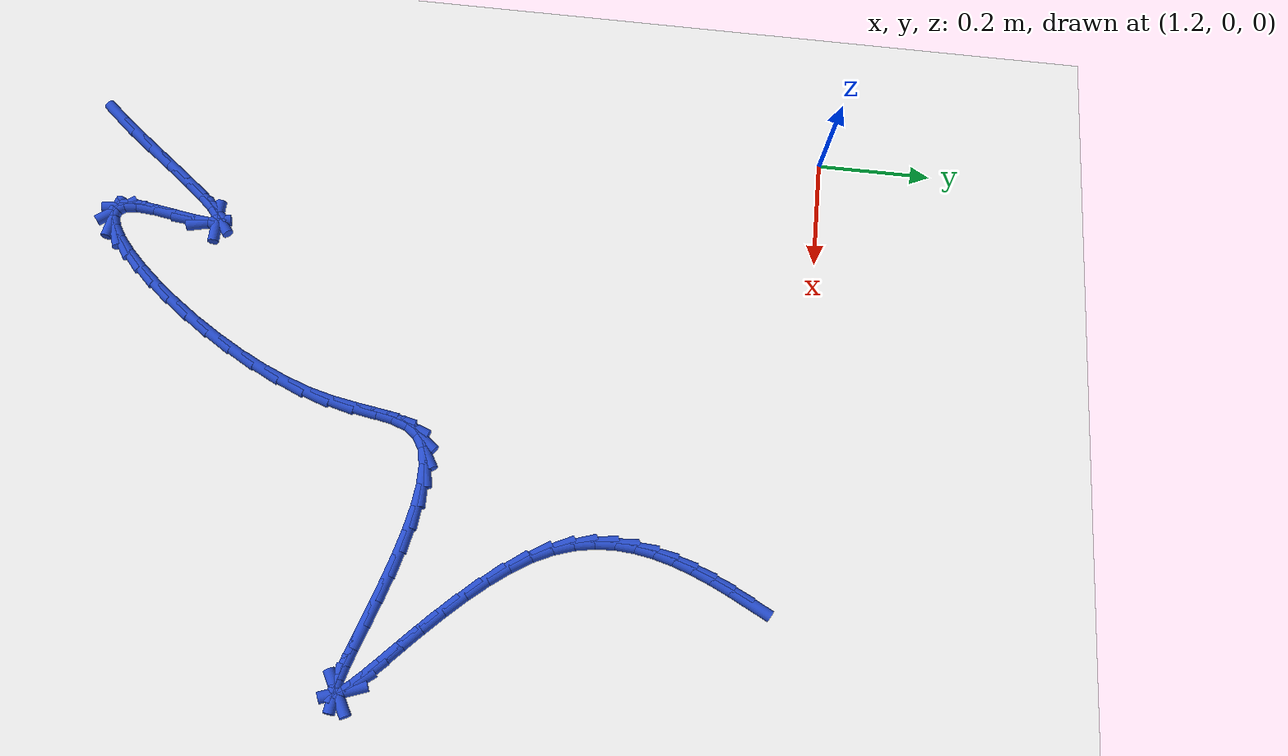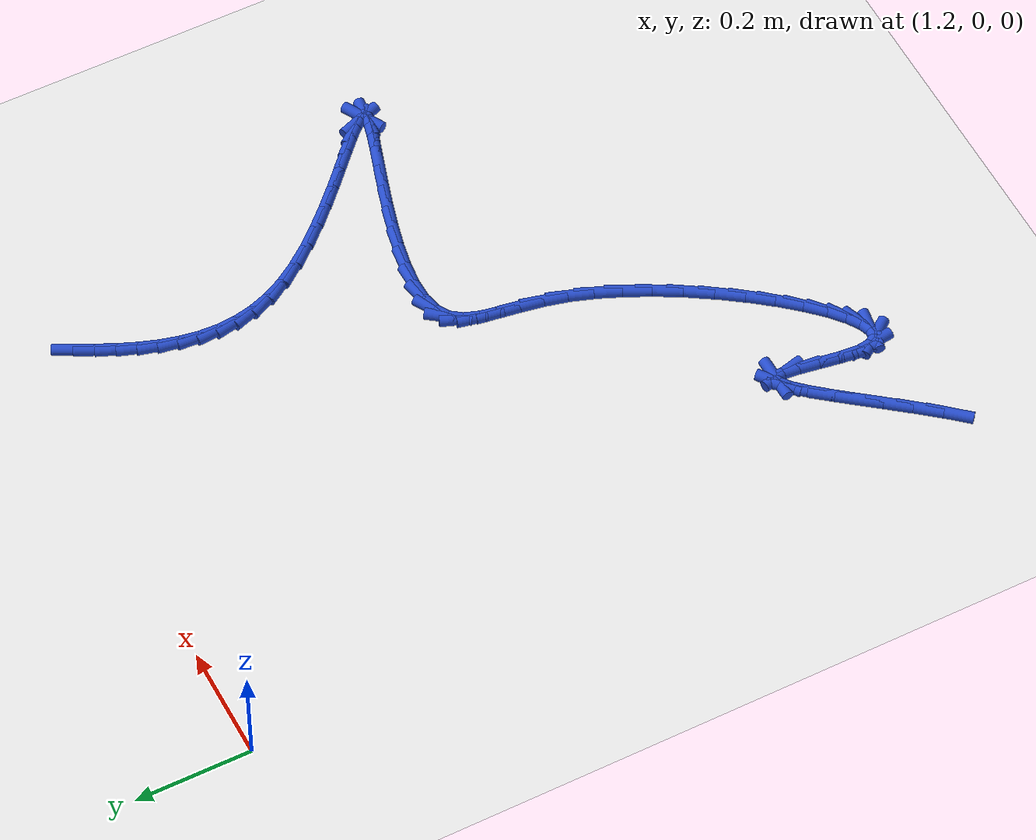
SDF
<sdf version="1.6">
 <world name="default">
  <model name="ground_plane">
   <static>1</static>
   <link name="link">
    <collision name="collision">
     <geometry><plane><normal>0 0 1</normal><size>100 100</size></plane></geometry>
     <surface><friction><ode><mu>100</mu><mu2>50</mu2></ode></friction></surface>
    </collision>
    <visual name="visual">
     <cast_shadows>0</cast_shadows>
     <geometry><plane><normal>0 0 1</normal><size>100 100</size></plane></geometry>
     <material>
      <script><uri>file://media/materials/scripts/gazebo.material</uri><name>Gazebo/WhiteGlow</name></script>
     </material>
    </visual>
   </link>
  </model>
  <model name="line">
   <link name="link_138">
    <pose>2.0247271699754457 -0.08043060426663522 0.01 0 1.57 1.0950506502743584</pose>
    <collision name="collision">
     <geometry><cylinder><radius>0.01</radius><length>0.08</length></cylinder></geometry>
    </collision>
    <visual name="visual">
     <material>
      <script><name>Gazebo/Blue</name><uri>file://media/materials/scripts/gazebo.material</uri></script>
     </material>
     <geometry><cylinder><radius>0.01</radius><length>0.08</length></cylinder></geometry>
    </visual>
   </link>
   <link name="link_139">
    <pose>2.008552745974663 -0.11182412453014488 0.01 0 1.57 1.1294762503430744</pose>
    <collision name="collision">
     <geometry><cylinder><radius>0.01</radius><length>0.08</length></cylinder></geometry>
    </collision>
    <visual name="visual">
     <material>
      <script><name>Gazebo/Blue</name><uri>file://media/materials/scripts/gazebo.material</uri></script>
     </material>
     <geometry><cylinder><radius>0.01</radius><length>0.08</length></cylinder></geometry>
    </visual>
   </link>
   <link name="link_140">
    <pose>1.9936320284575761 -0.1434094363191054 0.01 0 1.57 1.17705160058728</pose>
    <collision name="collision">
     <geometry><cylinder><radius>0.01</radius><length>0.08</length></cylinder></geometry>
    </collision>
    <visual name="visual">
     <material>
      <script><name>Gazebo/Blue</name><uri>file://media/materials/scripts/gazebo.material</uri></script>
     </material>
     <geometry><cylinder><radius>0.01</radius><length>0.08</length></cylinder></geometry>
    </visual>
   </link>
   <link name="link_141">
    <pose>1.9804248654713819 -0.17520028517921005 0.01 0 1.57 1.2388545746723125</pose>
    <collision name="collision">
     <geometry><cylinder><radius>0.01</radius><length>0.08</length></cylinder></geometry>
    </collision>
    <visual name="visual">
     <material>
      <script><name>Gazebo/Blue</name><uri>file://media/materials/scripts/gazebo.material</uri></script>
     </material>
     <geometry><cylinder><radius>0.01</radius><length>0.08</length></cylinder></geometry>
    </visual>
   </link>
   <link name="link_142">
    <pose>1.9693911050632753 -0.20721041665615353 0.01 0 1.57 1.3159261005133114</pose>
    <collision name="collision">
     <geometry><cylinder><radius>0.01</radius><length>0.08</length></cylinder></geometry>
    </collision>
    <visual name="visual">
     <material>
      <script><name>Gazebo/Blue</name><uri>file://media/materials/scripts/gazebo.material</uri></script>
     </material>
     <geometry><cylinder><radius>0.01</radius><length>0.08</length></cylinder></geometry>
    </visual>
   </link>
   <link name="link_143">
    <pose>1.9609905952804505 -0.23945357629562994 0.01 0 1.57 1.408870990624206</pose>
    <collision name="collision">
     <geometry><cylinder><radius>0.01</radius><length>0.08</length></cylinder></geometry>
    </collision>
    <visual name="visual">
     <material>
      <script><name>Gazebo/Blue</name><uri>file://media/materials/scripts/gazebo.material</uri></script>
     </material>
     <geometry><cylinder><radius>0.01</radius><length>0.08</length></cylinder></geometry>
    </visual>
   </link>
   <link name="link_144">
    <pose>1.9556831841701028 -0.27194350964333364 0.01 0 1.57 1.5172767933626772</pose>
    <collision name="collision">
     <geometry><cylinder><radius>0.01</radius><length>0.08</length></cylinder></geometry>
    </collision>
    <visual name="visual">
     <material>
      <script><name>Gazebo/Blue</name><uri>file://media/materials/scripts/gazebo.material</uri></script>
     </material>
     <geometry><cylinder><radius>0.01</radius><length>0.08</length></cylinder></geometry>
    </visual>
   </link>
   <link name="link_145">
    <pose>1.9539287197794275 -0.3046939622449588 0.01 0 1.57 -1.5025195864326288</pose>
    <collision name="collision">
     <geometry><cylinder><radius>0.01</radius><length>0.08</length></cylinder></geometry>
    </collision>
    <visual name="visual">
     <material>
      <script><name>Gazebo/Blue</name><uri>file://media/materials/scripts/gazebo.material</uri></script>
     </material>
     <geometry><cylinder><radius>0.01</radius><length>0.08</length></cylinder></geometry>
    </visual>
   </link>
   <link name="link_146">
    <pose>1.9561870501556196 -0.3377186796462008 0.01 0 1.57 -1.3714264542045247</pose>
    <collision name="collision">
     <geometry><cylinder><radius>0.01</radius><length>0.08</length></cylinder></geometry>
    </collision>
    <visual name="visual">
     <material>
      <script><name>Gazebo/Blue</name><uri>file://media/materials/scripts/gazebo.material</uri></script>
     </material>
     <geometry><cylinder><radius>0.01</radius><length>0.08</length></cylinder></geometry>
    </visual>
   </link>
   <link name="link_147">
    <pose>1.9629180233458736 -0.37103140739275153 0.01 0 1.57 -1.2368168358113825</pose>
    <collision name="collision">
     <geometry><cylinder><radius>0.01</radius><length>0.08</length></cylinder></geometry>
    </collision>
    <visual name="visual">
     <material>
      <script><name>Gazebo/Blue</name><uri>file://media/materials/scripts/gazebo.material</uri></script>
     </material>
     <geometry><cylinder><radius>0.01</radius><length>0.08</length></cylinder></geometry>
    </visual>
   </link>
   <link name="link_148">
    <pose>1.9745814873973848 -0.40464589103030657 0.01 0 1.57 -1.1050404242813778</pose>
    <collision name="collision">
     <geometry><cylinder><radius>0.01</radius><length>0.08</length></cylinder></geometry>
    </collision>
    <visual name="visual">
     <material>
      <script><name>Gazebo/Blue</name><uri>file://media/materials/scripts/gazebo.material</uri></script>
     </material>
     <geometry><cylinder><radius>0.01</radius><length>0.08</length></cylinder></geometry>
    </visual>
   </link>
   <link name="link_149">
    <pose>1.991635773216542 -0.4385754400669718 0.01 0 1.57 -0.9893792489730896</pose>
    <collision name="collision">
     <geometry><cylinder><radius>0.01</radius><length>0.08</length></cylinder></geometry>
    </collision>
    <visual name="visual">
     <material>
      <script><name>Gazebo/Blue</name><uri>file://media/materials/scripts/gazebo.material</uri></script>
     </material>
     <geometry><cylinder><radius>0.01</radius><length>0.08</length></cylinder></geometry>
    </visual>
   </link>
   <link name="link_150">
    <pose>2.014059282567962 -0.47269542879447507 0.01 0 1.57 -0.9046146214138437</pose>
    <collision name="collision">
     <geometry><cylinder><radius>0.01</radius><length>0.08</length></cylinder></geometry>
    </collision>
    <visual name="visual">
     <material>
      <script><name>Gazebo/Blue</name><uri>file://media/materials/scripts/gazebo.material</uri></script>
     </material>
     <geometry><cylinder><radius>0.01</radius><length>0.08</length></cylinder></geometry>
    </visual>
   </link>
   <link name="link_151">
    <pose>2.0406688958446475 -0.5065474015955485 0.01 0 1.57 -0.8434880145203149</pose>
    <collision name="collision">
     <geometry><cylinder><radius>0.01</radius><length>0.08</length></cylinder></geometry>
    </collision>
    <visual name="visual">
     <material>
      <script><name>Gazebo/Blue</name><uri>file://media/materials/scripts/gazebo.material</uri></script>
     </material>
     <geometry><cylinder><radius>0.01</radius><length>0.08</length></cylinder></geometry>
    </visual>
   </link>
   <link name="link_152">
    <pose>2.0701092337014626 -0.5396233941188522 0.01 0 1.57 -0.799372640556842</pose>
    <collision name="collision">
     <geometry><cylinder><radius>0.01</radius><length>0.08</length></cylinder></geometry>
    </collision>
    <visual name="visual">
     <material>
      <script><name>Gazebo/Blue</name><uri>file://media/materials/scripts/gazebo.material</uri></script>
     </material>
     <geometry><cylinder><radius>0.01</radius><length>0.08</length></cylinder></geometry>
    </visual>
   </link>
   <link name="link_153">
    <pose>2.10102491679327 -0.571415442013046 0.01 0 1.57 -0.7684341694900219</pose>
    <collision name="collision">
     <geometry><cylinder><radius>0.01</radius><length>0.08</length></cylinder></geometry>
    </collision>
    <visual name="visual">
     <material>
      <script><name>Gazebo/Blue</name><uri>file://media/materials/scripts/gazebo.material</uri></script>
     </material>
     <geometry><cylinder><radius>0.01</radius><length>0.08</length></cylinder></geometry>
    </visual>
   </link>
   <link name="link_154">
    <pose>2.132060565774937 -0.6014155809267903 0.01 0 1.57 -0.7488934891672135</pose>
    <collision name="collision">
     <geometry><cylinder><radius>0.01</radius><length>0.08</length></cylinder></geometry>
    </collision>
    <visual name="visual">
     <material>
      <script><name>Gazebo/Blue</name><uri>file://media/materials/scripts/gazebo.material</uri></script>
     </material>
     <geometry><cylinder><radius>0.01</radius><length>0.08</length></cylinder></geometry>
    </visual>
   </link>
   <link name="link_155">
    <pose>2.1618608013013256 -0.6291158465087455 0.01 0 1.57 -0.7409565879035795</pose>
    <collision name="collision">
     <geometry><cylinder><radius>0.01</radius><length>0.08</length></cylinder></geometry>
    </collision>
    <visual name="visual">
     <material>
      <script><name>Gazebo/Blue</name><uri>file://media/materials/scripts/gazebo.material</uri></script>
     </material>
     <geometry><cylinder><radius>0.01</radius><length>0.08</length></cylinder></geometry>
    </visual>
   </link>
   <link name="link_156">
    <pose>2.1890702440273 -0.6540082744075706 0.01 0 1.57 -0.7478010666013102</pose>
    <collision name="collision">
     <geometry><cylinder><radius>0.01</radius><length>0.08</length></cylinder></geometry>
    </collision>
    <visual name="visual">
     <material>
      <script><name>Gazebo/Blue</name><uri>file://media/materials/scripts/gazebo.material</uri></script>
     </material>
     <geometry><cylinder><radius>0.01</radius><length>0.08</length></cylinder></geometry>
    </visual>
   </link>
   <link name="link_157">
    <pose>2.212333514607726 -0.6755849002719261 0.01 0 1.57 -0.7795502089020786</pose>
    <collision name="collision">
     <geometry><cylinder><radius>0.01</radius><length>0.08</length></cylinder></geometry>
    </collision>
    <visual name="visual">
     <material>
      <script><name>Gazebo/Blue</name><uri>file://media/materials/scripts/gazebo.material</uri></script>
     </material>
     <geometry><cylinder><radius>0.01</radius><length>0.08</length></cylinder></geometry>
    </visual>
   </link>
   <link name="link_158">
    <pose>2.2302952336974666 -0.6933377597504726 0.01 0 1.57 -0.8707820539426208</pose>
    <collision name="collision">
     <geometry><cylinder><radius>0.01</radius><length>0.08</length></cylinder></geometry>
    </collision>
    <visual name="visual">
     <material>
      <script><name>Gazebo/Blue</name><uri>file://media/materials/scripts/gazebo.material</uri></script>
     </material>
     <geometry><cylinder><radius>0.01</radius><length>0.08</length></cylinder></geometry>
    </visual>
   </link>
   <link name="link_159">
    <pose>2.2416000219513874 -0.7067588884918699 0.01 0 1.57 -1.2044423058953249</pose>
    <collision name="collision">
     <geometry><cylinder><radius>0.01</radius><length>0.08</length></cylinder></geometry>
    </collision>
    <visual name="visual">
     <material>
      <script><name>Gazebo/Blue</name><uri>file://media/materials/scripts/gazebo.material</uri></script>
     </material>
     <geometry><cylinder><radius>0.01</radius><length>0.08</length></cylinder></geometry>
    </visual>
   </link>
   <link name="link_160">
    <pose>2.244892500024352 -0.7153403221447783 0.01 0 1.57 0.4989950706978198</pose>
    <collision name="collision">
     <geometry><cylinder><radius>0.01</radius><length>0.08</length></cylinder></geometry>
    </collision>
    <visual name="visual">
     <material>
      <script><name>Gazebo/Blue</name><uri>file://media/materials/scripts/gazebo.material</uri></script>
     </material>
     <geometry><cylinder><radius>0.01</radius><length>0.08</length></cylinder></geometry>
    </visual>
   </link>
   <link name="link_161">
    <pose>2.2388880256975 -0.7186127507966984 0.01 0 1.57 -0.11533099211737843</pose>
    <collision name="collision">
     <geometry><cylinder><radius>0.01</radius><length>0.08</length></cylinder></geometry>
    </collision>
    <visual name="visual">
     <material>
      <script><name>Gazebo/Blue</name><uri>file://media/materials/scripts/gazebo.material</uri></script>
     </material>
     <geometry><cylinder><radius>0.01</radius><length>0.08</length></cylinder></geometry>
    </visual>
   </link>
   <link name="link_162">
    <pose>2.2236592780493423 -0.7168485753712801 0.01 0 1.57 -0.24785685174500985</pose>
    <collision name="collision">
     <geometry><cylinder><radius>0.01</radius><length>0.08</length></cylinder></geometry>
    </collision>
    <visual name="visual">
     <material>
      <script><name>Gazebo/Blue</name><uri>file://media/materials/scripts/gazebo.material</uri></script>
     </material>
     <geometry><cylinder><radius>0.01</radius><length>0.08</length></cylinder></geometry>
    </visual>
   </link>
   <link name="link_163">
    <pose>2.2005014736892763 -0.7109882547796331 0.01 0 1.57 -0.2935447955377473</pose>
    <collision name="collision">
     <geometry><cylinder><radius>0.01</radius><length>0.08</length></cylinder></geometry>
    </collision>
    <visual name="visual">
     <material>
      <script><name>Gazebo/Blue</name><uri>file://media/materials/scripts/gazebo.material</uri></script>
     </material>
     <geometry><cylinder><radius>0.01</radius><length>0.08</length></cylinder></geometry>
    </visual>
   </link>
   <link name="link_164">
    <pose>2.170753517136344 -0.7019961212752026 0.01 0 1.57 -0.30866247572754413</pose>
    <collision name="collision">
     <geometry><cylinder><radius>0.01</radius><length>0.08</length></cylinder></geometry>
    </collision>
    <visual name="visual">
     <material>
      <script><name>Gazebo/Blue</name><uri>file://media/materials/scripts/gazebo.material</uri></script>
     </material>
     <geometry><cylinder><radius>0.01</radius><length>0.08</length></cylinder></geometry>
    </visual>
   </link>
   <link name="link_165">
    <pose>2.13575431290959 -0.6908365071114354 0.01 0 1.57 -0.30762836141447863</pose>
    <collision name="collision">
     <geometry><cylinder><radius>0.01</radius><length>0.08</length></cylinder></geometry>
    </collision>
    <visual name="visual">
     <material>
      <script><name>Gazebo/Blue</name><uri>file://media/materials/scripts/gazebo.material</uri></script>
     </material>
     <geometry><cylinder><radius>0.01</radius><length>0.08</length></cylinder></geometry>
    </visual>
   </link>
   <link name="link_166">
    <pose>2.0968427655280557 -0.6784737445417767 0.01 0 1.57 -0.2949049489777448</pose>
    <collision name="collision">
     <geometry><cylinder><radius>0.01</radius><length>0.08</length></cylinder></geometry>
    </collision>
    <visual name="visual">
     <material>
      <script><name>Gazebo/Blue</name><uri>file://media/materials/scripts/gazebo.material</uri></script>
     </material>
     <geometry><cylinder><radius>0.01</radius><length>0.08</length></cylinder></geometry>
    </visual>
   </link>
   <link name="link_167">
    <pose>2.0553577795107847 -0.6658721658196726 0.01 0 1.57 -0.27115392500749286</pose>
    <collision name="collision">
     <geometry><cylinder><radius>0.01</radius><length>0.08</length></cylinder></geometry>
    </collision>
    <visual name="visual">
     <material>
      <script><name>Gazebo/Blue</name><uri>file://media/materials/scripts/gazebo.material</uri></script>
     </material>
     <geometry><cylinder><radius>0.01</radius><length>0.08</length></cylinder></geometry>
    </visual>
   </link>
   <link name="link_168">
    <pose>2.0126382593768195 -0.6539961031985688 0.01 0 1.57 -0.23462572188194367</pose>
    <collision name="collision">
     <geometry><cylinder><radius>0.01</radius><length>0.08</length></cylinder></geometry>
    </collision>
    <visual name="visual">
     <material>
      <script><name>Gazebo/Blue</name><uri>file://media/materials/scripts/gazebo.material</uri></script>
     </material>
     <geometry><cylinder><radius>0.01</radius><length>0.08</length></cylinder></geometry>
    </visual>
   </link>
   <link name="link_169">
    <pose>1.9700231096452019 -0.6438098889319108 0.01 0 1.57 -0.18094040080299234</pose>
    <collision name="collision">
     <geometry><cylinder><radius>0.01</radius><length>0.08</length></cylinder></geometry>
    </collision>
    <visual name="visual">
     <material>
      <script><name>Gazebo/Blue</name><uri>file://media/materials/scripts/gazebo.material</uri></script>
     </material>
     <geometry><cylinder><radius>0.01</radius><length>0.08</length></cylinder></geometry>
    </visual>
   </link>
   <link name="link_170">
    <pose>1.928851234834976 -0.636277855273145 0.01 0 1.57 -0.10159101337406642</pose>
    <collision name="collision">
     <geometry><cylinder><radius>0.01</radius><length>0.08</length></cylinder></geometry>
    </collision>
    <visual name="visual">
     <material>
      <script><name>Gazebo/Blue</name><uri>file://media/materials/scripts/gazebo.material</uri></script>
     </material>
     <geometry><cylinder><radius>0.01</radius><length>0.08</length></cylinder></geometry>
    </visual>
   </link>
   <link name="link_171">
    <pose>1.8904615394651834 -0.6323643344757166 0.01 0 1.57 0.019529219199697852</pose>
    <collision name="collision">
     <geometry><cylinder><radius>0.01</radius><length>0.08</length></cylinder></geometry>
    </collision>
    <visual name="visual">
     <material>
      <script><name>Gazebo/Blue</name><uri>file://media/materials/scripts/gazebo.material</uri></script>
     </material>
     <geometry><cylinder><radius>0.01</radius><length>0.08</length></cylinder></geometry>
    </visual>
   </link>
   <link name="link_172">
    <pose>1.856192928054867 -0.6330336587930718 0.01 0 1.57 0.21252744954301828</pose>
    <collision name="collision">
     <geometry><cylinder><radius>0.01</radius><length>0.08</length></cylinder></geometry>
    </collision>
    <visual name="visual">
     <material>
      <script><name>Gazebo/Blue</name><uri>file://media/materials/scripts/gazebo.material</uri></script>
     </material>
     <geometry><cylinder><radius>0.01</radius><length>0.08</length></cylinder></geometry>
    </visual>
   </link>
   <link name="link_173">
    <pose>1.8273843051230694 -0.6392501604786566 0.01 0 1.57 0.5242546366822244</pose>
    <collision name="collision">
     <geometry><cylinder><radius>0.01</radius><length>0.08</length></cylinder></geometry>
    </collision>
    <visual name="visual">
     <material>
      <script><name>Gazebo/Blue</name><uri>file://media/materials/scripts/gazebo.material</uri></script>
     </material>
     <geometry><cylinder><radius>0.01</radius><length>0.08</length></cylinder></geometry>
    </visual>
   </link>
   <link name="link_174">
    <pose>1.805373256902684 -0.6519775006411976 0.01 0 1.57 0.9298233728726443</pose>
    <collision name="collision">
     <geometry><cylinder><radius>0.01</radius><length>0.08</length></cylinder></geometry>
    </collision>
    <visual name="visual">
     <material>
      <script><name>Gazebo/Blue</name><uri>file://media/materials/scripts/gazebo.material</uri></script>
     </material>
     <geometry><cylinder><radius>0.01</radius><length>0.08</length></cylinder></geometry>
    </visual>
   </link>
   <link name="link_175">
    <pose>1.7906307054004413 -0.6717381181875757 0.01 0 1.57 1.2264422859467135</pose>
    <collision name="collision">
     <geometry><cylinder><radius>0.01</radius><length>0.08</length></cylinder></geometry>
    </collision>
    <visual name="visual">
     <material>
      <script><name>Gazebo/Blue</name><uri>file://media/materials/scripts/gazebo.material</uri></script>
     </material>
     <geometry><cylinder><radius>0.01</radius><length>0.08</length></cylinder></geometry>
    </visual>
   </link>
   <link name="link_176">
    <pose>1.781265219007097 -0.6978517684102771 0.01 0 1.57 1.37455975639802</pose>
    <collision name="collision">
     <geometry><cylinder><radius>0.01</radius><length>0.08</length></cylinder></geometry>
    </collision>
    <visual name="visual">
     <material>
      <script><name>Gazebo/Blue</name><uri>file://media/materials/scripts/gazebo.material</uri></script>
     </material>
     <geometry><cylinder><radius>0.01</radius><length>0.08</length></cylinder></geometry>
    </visual>
   </link>
   <link name="link_177">
    <pose>1.7749865948208037 -0.7294351905519225 0.01 0 1.57 1.4203797114302799</pose>
    <collision name="collision">
     <geometry><cylinder><radius>0.01</radius><length>0.08</length></cylinder></geometry>
    </collision>
    <visual name="visual">
     <material>
      <script><name>Gazebo/Blue</name><uri>file://media/materials/scripts/gazebo.material</uri></script>
     </material>
     <geometry><cylinder><radius>0.01</radius><length>0.08</length></cylinder></geometry>
    </visual>
   </link>
   <link name="link_178">
    <pose>1.7695046299397148 -0.7656051238551334 0.01 0 1.57 1.3976065973840428</pose>
    <collision name="collision">
     <geometry><cylinder><radius>0.01</radius><length>0.08</length></cylinder></geometry>
    </collision>
    <visual name="visual">
     <material>
      <script><name>Gazebo/Blue</name><uri>file://media/materials/scripts/gazebo.material</uri></script>
     </material>
     <geometry><cylinder><radius>0.01</radius><length>0.08</length></cylinder></geometry>
    </visual>
   </link>
   <link name="link_179">
    <pose>1.7625291214619838 -0.8054783075625298 0.01 0 1.57 1.3244936655835027</pose>
    <collision name="collision">
     <geometry><cylinder><radius>0.01</radius><length>0.08</length></cylinder></geometry>
    </collision>
    <visual name="visual">
     <material>
      <script><name>Gazebo/Blue</name><uri>file://media/materials/scripts/gazebo.material</uri></script>
     </material>
     <geometry><cylinder><radius>0.01</radius><length>0.08</length></cylinder></geometry>
    </visual>
   </link>
   <link name="link_180">
    <pose>1.7517957817243701 -0.8481713534076242 0.01 0 1.57 1.2355888994375395</pose>
    <collision name="collision">
     <geometry><cylinder><radius>0.01</radius><length>0.08</length></cylinder></geometry>
    </collision>
    <visual name="visual">
     <material>
      <script><name>Gazebo/Blue</name><uri>file://media/materials/scripts/gazebo.material</uri></script>
     </material>
     <geometry><cylinder><radius>0.01</radius><length>0.08</length></cylinder></geometry>
    </visual>
   </link>
   <link name="link_181">
    <pose>1.7362509986223338 -0.8927949163135752 0.01 0 1.57 1.1632933946179522</pose>
    <collision name="collision">
     <geometry><cylinder><radius>0.01</radius><length>0.08</length></cylinder></geometry>
    </collision>
    <visual name="visual">
     <material>
      <script><name>Gazebo/Blue</name><uri>file://media/materials/scripts/gazebo.material</uri></script>
     </material>
     <geometry><cylinder><radius>0.01</radius><length>0.08</length></cylinder></geometry>
    </visual>
   </link>
   <link name="link_182">
    <pose>1.7165427154324315 -0.9384512791482515 0.01 0 1.57 1.1036474302778367</pose>
    <collision name="collision">
     <geometry><cylinder><radius>0.01</radius><length>0.08</length></cylinder></geometry>
    </collision>
    <visual name="visual">
     <material>
      <script><name>Gazebo/Blue</name><uri>file://media/materials/scripts/gazebo.material</uri></script>
     </material>
     <geometry><cylinder><radius>0.01</radius><length>0.08</length></cylinder></geometry>
    </visual>
   </link>
   <link name="link_183">
    <pose>1.6934465458983068 -0.9842420966106036 0.01 0 1.57 1.0520057252144257</pose>
    <collision name="collision">
     <geometry><cylinder><radius>0.01</radius><length>0.08</length></cylinder></geometry>
    </collision>
    <visual name="visual">
     <material>
      <script><name>Gazebo/Blue</name><uri>file://media/materials/scripts/gazebo.material</uri></script>
     </material>
     <geometry><cylinder><radius>0.01</radius><length>0.08</length></cylinder></geometry>
    </visual>
   </link>
   <link name="link_184">
    <pose>1.6677381037636032 -1.0292690233995805 0.01 0 1.57 1.0048982558381627</pose>
    <collision name="collision">
     <geometry><cylinder><radius>0.01</radius><length>0.08</length></cylinder></geometry>
    </collision>
    <visual name="visual">
     <material>
      <script><name>Gazebo/Blue</name><uri>file://media/materials/scripts/gazebo.material</uri></script>
     </material>
     <geometry><cylinder><radius>0.01</radius><length>0.08</length></cylinder></geometry>
    </visual>
   </link>
   <link name="link_185">
    <pose>1.6401930027719644 -1.072633714214131 0.01 0 1.57 0.9593590267158086</pose>
    <collision name="collision">
     <geometry><cylinder><radius>0.01</radius><length>0.08</length></cylinder></geometry>
    </collision>
    <visual name="visual">
     <material>
      <script><name>Gazebo/Blue</name><uri>file://media/materials/scripts/gazebo.material</uri></script>
     </material>
     <geometry><cylinder><radius>0.01</radius><length>0.08</length></cylinder></geometry>
    </visual>
   </link>
   <link name="link_186">
    <pose>1.6115868566670337 -1.1134378237532048 0.01 0 1.57 0.9123389967847065</pose>
    <collision name="collision">
     <geometry><cylinder><radius>0.01</radius><length>0.08</length></cylinder></geometry>
    </collision>
    <visual name="visual">
     <material>
      <script><name>Gazebo/Blue</name><uri>file://media/materials/scripts/gazebo.material</uri></script>
     </material>
     <geometry><cylinder><radius>0.01</radius><length>0.08</length></cylinder></geometry>
    </visual>
   </link>
   <link name="link_187">
    <pose>1.5826952791924556 -1.1507830067157512 0.01 0 1.57 0.859971585783261</pose>
    <collision name="collision">
     <geometry><cylinder><radius>0.01</radius><length>0.08</length></cylinder></geometry>
    </collision>
    <visual name="visual">
     <material>
      <script><name>Gazebo/Blue</name><uri>file://media/materials/scripts/gazebo.material</uri></script>
     </material>
     <geometry><cylinder><radius>0.01</radius><length>0.08</length></cylinder></geometry>
    </visual>
   </link>
   <link name="link_188">
    <pose>1.554293884091873 -1.1837709178007187 0.01 0 1.57 0.7962728547750871</pose>
    <collision name="collision">
     <geometry><cylinder><radius>0.01</radius><length>0.08</length></cylinder></geometry>
    </collision>
    <visual name="visual">
     <material>
      <script><name>Gazebo/Blue</name><uri>file://media/materials/scripts/gazebo.material</uri></script>
     </material>
     <geometry><cylinder><radius>0.01</radius><length>0.08</length></cylinder></geometry>
    </visual>
   </link>
   <link name="link_189">
    <pose>1.5271582851089298 -1.2115032117070572 0.01 0 1.57 0.7102098133775707</pose>
    <collision name="collision">
     <geometry><cylinder><radius>0.01</radius><length>0.08</length></cylinder></geometry>
    </collision>
    <visual name="visual">
     <material>
      <script><name>Gazebo/Blue</name><uri>file://media/materials/scripts/gazebo.material</uri></script>
     </material>
     <geometry><cylinder><radius>0.01</radius><length>0.08</length></cylinder></geometry>
    </visual>
   </link>
   <link name="link_190">
    <pose>1.502064095987268 -1.2330815431337154 0.01 0 1.57 0.5778212280668387</pose>
    <collision name="collision">
     <geometry><cylinder><radius>0.01</radius><length>0.08</length></cylinder></geometry>
    </collision>
    <visual name="visual">
     <material>
      <script><name>Gazebo/Blue</name><uri>file://media/materials/scripts/gazebo.material</uri></script>
     </material>
     <geometry><cylinder><radius>0.01</radius><length>0.08</length></cylinder></geometry>
    </visual>
   </link>
   <link name="link_191">
    <pose>1.4797869304705347 -1.2476075667796427 0.01 0 1.57 0.3383800432365121</pose>
    <collision name="collision">
     <geometry><cylinder><radius>0.01</radius><length>0.08</length></cylinder></geometry>
    </collision>
    <visual name="visual">
     <material>
      <script><name>Gazebo/Blue</name><uri>file://media/materials/scripts/gazebo.material</uri></script>
     </material>
     <geometry><cylinder><radius>0.01</radius><length>0.08</length></cylinder></geometry>
    </visual>
   </link>
   <link name="link_192">
    <pose>1.4611024023023709 -1.2541829373437876 0.01 0 1.57 -0.15749882898677514</pose>
    <collision name="collision">
     <geometry><cylinder><radius>0.01</radius><length>0.08</length></cylinder></geometry>
    </collision>
    <visual name="visual">
     <material>
      <script><name>Gazebo/Blue</name><uri>file://media/materials/scripts/gazebo.material</uri></script>
     </material>
     <geometry><cylinder><radius>0.01</radius><length>0.08</length></cylinder></geometry>
    </visual>
   </link>
   <link name="link_193">
    <pose>1.4467861252264207 -1.2519093095251 0.01 0 1.57 -0.9190053927542265</pose>
    <collision name="collision">
     <geometry><cylinder><radius>0.01</radius><length>0.08</length></cylinder></geometry>
    </collision>
    <visual name="visual">
     <material>
      <script><name>Gazebo/Blue</name><uri>file://media/materials/scripts/gazebo.material</uri></script>
     </material>
     <geometry><cylinder><radius>0.01</radius><length>0.08</length></cylinder></geometry>
    </visual>
   </link>
   <link name="link_194">
    <pose>1.4376137129863285 -1.2398883380225292 0.01 0 1.57 -1.428250378264709</pose>
    <collision name="collision">
     <geometry><cylinder><radius>0.01</radius><length>0.08</length></cylinder></geometry>
    </collision>
    <visual name="visual">
     <material>
      <script><name>Gazebo/Blue</name><uri>file://media/materials/scripts/gazebo.material</uri></script>
     </material>
     <geometry><cylinder><radius>0.01</radius><length>0.08</length></cylinder></geometry>
    </visual>
   </link>
   <link name="link_195">
    <pose>1.434360643992094 -1.2172219226690788 0.01 0 1.57 1.490113685406455</pose>
    <collision name="collision">
     <geometry><cylinder><radius>0.01</radius><length>0.08</length></cylinder></geometry>
    </collision>
    <visual name="visual">
     <material>
      <script><name>Gazebo/Blue</name><uri>file://media/materials/scripts/gazebo.material</uri></script>
     </material>
     <geometry><cylinder><radius>0.01</radius><length>0.08</length></cylinder></geometry>
    </visual>
   </link>
   <link name="link_196">
    <pose>1.4370108711948382 -1.1844456780885775 0.01 0 1.57 1.4153885450642054</pose>
    <collision name="collision">
     <geometry><cylinder><radius>0.01</radius><length>0.08</length></cylinder></geometry>
    </collision>
    <visual name="visual">
     <material>
      <script><name>Gazebo/Blue</name><uri>file://media/materials/scripts/gazebo.material</uri></script>
     </material>
     <geometry><cylinder><radius>0.01</radius><length>0.08</length></cylinder></geometry>
    </visual>
   </link>
   <link name="link_197">
    <pose>1.4428921917525093 -1.1469063968709878 0.01 0 1.57 1.4085606058075202</pose>
    <collision name="collision">
     <geometry><cylinder><radius>0.01</radius><length>0.08</length></cylinder></geometry>
    </collision>
    <visual name="visual">
     <material>
      <script><name>Gazebo/Blue</name><uri>file://media/materials/scripts/gazebo.material</uri></script>
     </material>
     <geometry><cylinder><radius>0.01</radius><length>0.08</length></cylinder></geometry>
    </visual>
   </link>
   <link name="link_198">
    <pose>1.4487758627685767 -1.1109589499931916 0.01 0 1.57 1.4761793969420234</pose>
    <collision name="collision">
     <geometry><cylinder><radius>0.01</radius><length>0.08</length></cylinder></geometry>
    </collision>
    <visual name="visual">
     <material>
      <script><name>Gazebo/Blue</name><uri>file://media/materials/scripts/gazebo.material</uri></script>
     </material>
     <geometry><cylinder><radius>0.01</radius><length>0.08</length></cylinder></geometry>
    </visual>
   </link>
   <link name="link_199">
    <pose>1.4514331413465091 -1.0829582084320695 0.01 0 1.57 -1.3281094296965428</pose>
    <collision name="collision">
     <geometry><cylinder><radius>0.01</radius><length>0.08</length></cylinder></geometry>
    </collision>
    <visual name="visual">
     <material>
      <script><name>Gazebo/Blue</name><uri>file://media/materials/scripts/gazebo.material</uri></script>
     </material>
     <geometry><cylinder><radius>0.01</radius><length>0.08</length></cylinder></geometry>
    </visual>
   </link>
   <link name="link_200">
    <pose>1.4479039624621088 -1.068702723656329 0.01 0 1.57 0.010539062169330546</pose>
    <collision name="collision">
     <geometry><cylinder><radius>0.01</radius><length>0.08</length></cylinder></geometry>
    </collision>
    <visual name="visual">
     <material>
      <script><name>Gazebo/Blue</name><uri>file://media/materials/scripts/gazebo.material</uri></script>
     </material>
     <geometry><cylinder><radius>0.01</radius><length>0.08</length></cylinder></geometry>
    </visual>
   </link>
   <link name="link_201">
    <pose>1.4377305050735327 -1.0688099463260596 0.01 0 1.57 0.6567611976221801</pose>
    <collision name="collision">
     <geometry><cylinder><radius>0.01</radius><length>0.08</length></cylinder></geometry>
    </collision>
    <visual name="visual">
     <material>
      <script><name>Gazebo/Blue</name><uri>file://media/materials/scripts/gazebo.material</uri></script>
     </material>
     <geometry><cylinder><radius>0.01</radius><length>0.08</length></cylinder></geometry>
    </visual>
   </link>
   <link name="link_202">
    <pose>1.4218162077992311 -1.0810787276456573 0.01 0 1.57 0.8194545353427979</pose>
    <collision name="collision">
     <geometry><cylinder><radius>0.01</radius><length>0.08</length></cylinder></geometry>
    </collision>
    <visual name="visual">
     <material>
      <script><name>Gazebo/Blue</name><uri>file://media/materials/scripts/gazebo.material</uri></script>
     </material>
     <geometry><cylinder><radius>0.01</radius><length>0.08</length></cylinder></geometry>
    </visual>
   </link>
   <link name="link_203">
    <pose>1.401078125944907 -1.1032797243549382 0.01 0 1.57 0.8815114652866233</pose>
    <collision name="collision">
     <geometry><cylinder><radius>0.01</radius><length>0.08</length></cylinder></geometry>
    </collision>
    <visual name="visual">
     <material>
      <script><name>Gazebo/Blue</name><uri>file://media/materials/scripts/gazebo.material</uri></script>
     </material>
     <geometry><cylinder><radius>0.01</radius><length>0.08</length></cylinder></geometry>
    </visual>
   </link>
   <link name="link_204">
    <pose>1.3764333148162622 -1.1331835931937175 0.01 0 1.57 0.9076654262434162</pose>
    <collision name="collision">
     <geometry><cylinder><radius>0.01</radius><length>0.08</length></cylinder></geometry>
    </collision>
    <visual name="visual">
     <material>
      <script><name>Gazebo/Blue</name><uri>file://media/materials/scripts/gazebo.material</uri></script>
     </material>
     <geometry><cylinder><radius>0.01</radius><length>0.08</length></cylinder></geometry>
    </visual>
   </link>
   <link name="link_205">
    <pose>1.3487988297189992 -1.168560990901812 0.01 0 1.57 0.9151300870794263</pose>
    <collision name="collision">
     <geometry><cylinder><radius>0.01</radius><length>0.08</length></cylinder></geometry>
    </collision>
    <visual name="visual">
     <material>
      <script><name>Gazebo/Blue</name><uri>file://media/materials/scripts/gazebo.material</uri></script>
     </material>
     <geometry><cylinder><radius>0.01</radius><length>0.08</length></cylinder></geometry>
    </visual>
   </link>
   <link name="link_206">
    <pose>1.3190917259588208 -1.2071825742190379 0.01 0 1.57 0.9092136285497937</pose>
    <collision name="collision">
     <geometry><cylinder><radius>0.01</radius><length>0.08</length></cylinder></geometry>
    </collision>
    <visual name="visual">
     <material>
      <script><name>Gazebo/Blue</name><uri>file://media/materials/scripts/gazebo.material</uri></script>
     </material>
     <geometry><cylinder><radius>0.01</radius><length>0.08</length></cylinder></geometry>
    </visual>
   </link>
   <link name="link_207">
    <pose>1.2882290588414294 -1.2468189998852108 0.01 0 1.57 0.8903110732208646</pose>
    <collision name="collision">
     <geometry><cylinder><radius>0.01</radius><length>0.08</length></cylinder></geometry>
    </collision>
    <visual name="visual">
     <material>
      <script><name>Gazebo/Blue</name><uri>file://media/materials/scripts/gazebo.material</uri></script>
     </material>
     <geometry><cylinder><radius>0.01</radius><length>0.08</length></cylinder></geometry>
    </visual>
   </link>
   <link name="link_208">
    <pose>1.2571278836725261 -1.2852409246401477 0.01 0 1.57 0.8549403265340413</pose>
    <collision name="collision">
     <geometry><cylinder><radius>0.01</radius><length>0.08</length></cylinder></geometry>
    </collision>
    <visual name="visual">
     <material>
      <script><name>Gazebo/Blue</name><uri>file://media/materials/scripts/gazebo.material</uri></script>
     </material>
     <geometry><cylinder><radius>0.01</radius><length>0.08</length></cylinder></geometry>
    </visual>
   </link>
  </model>
 </world>
</sdf>
